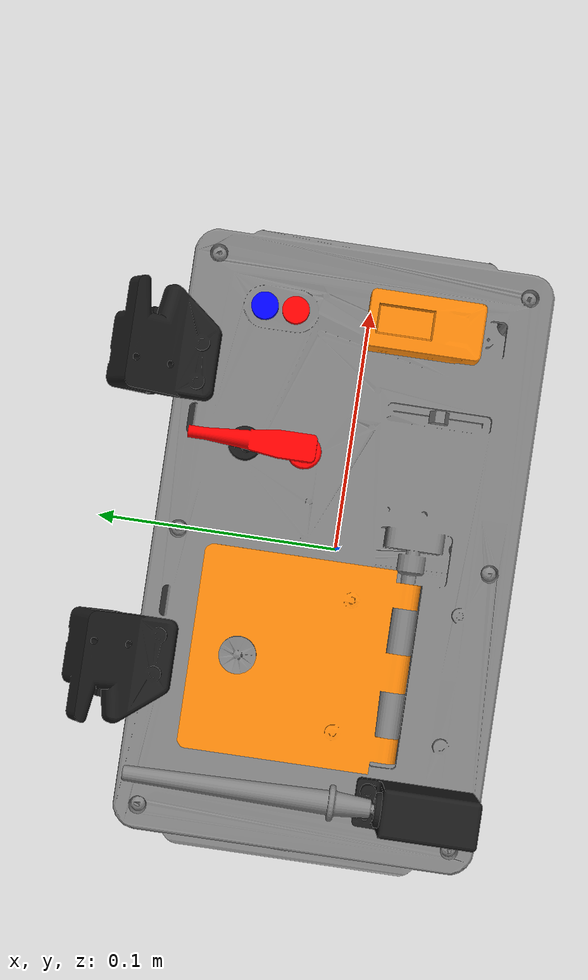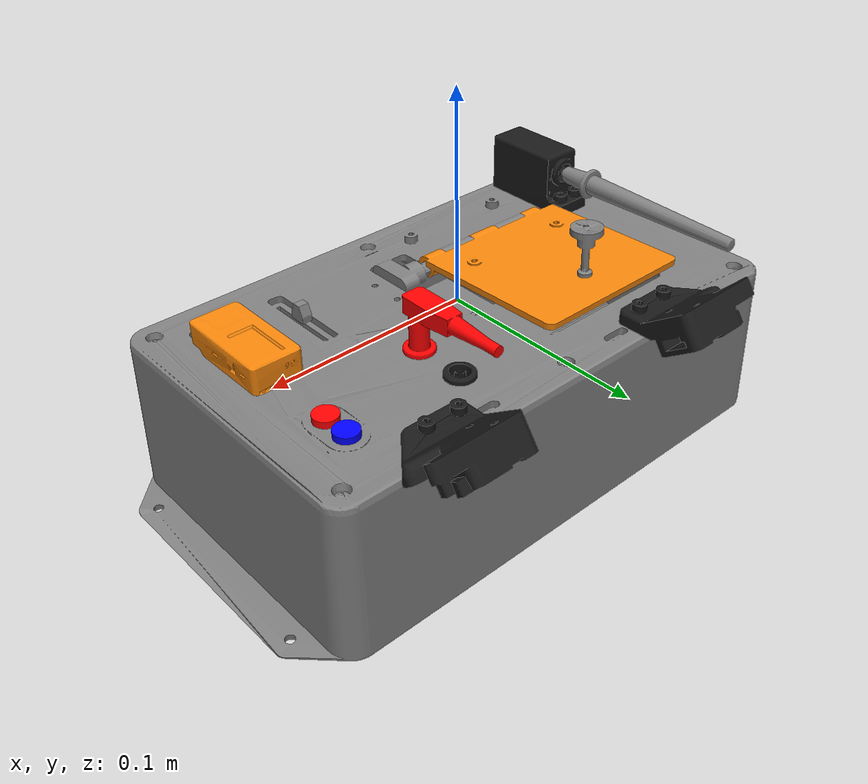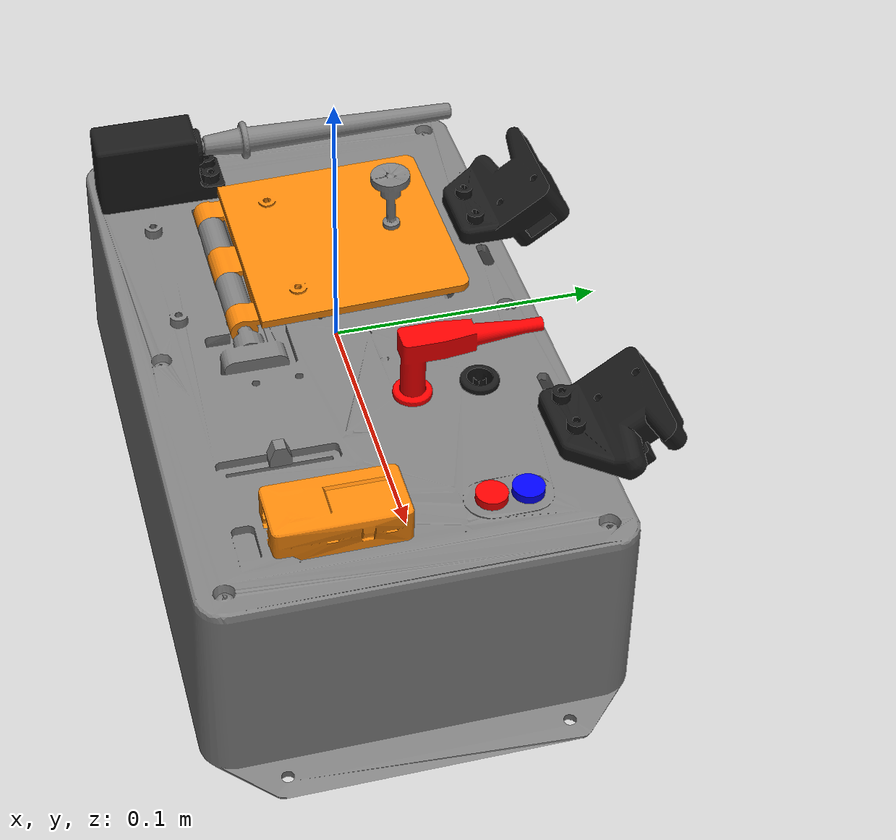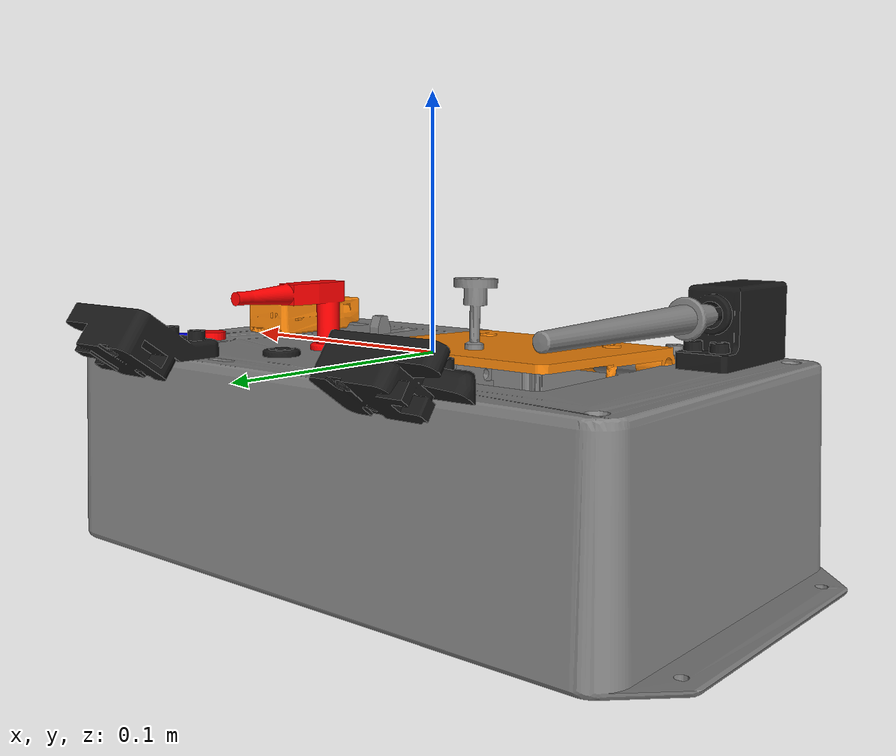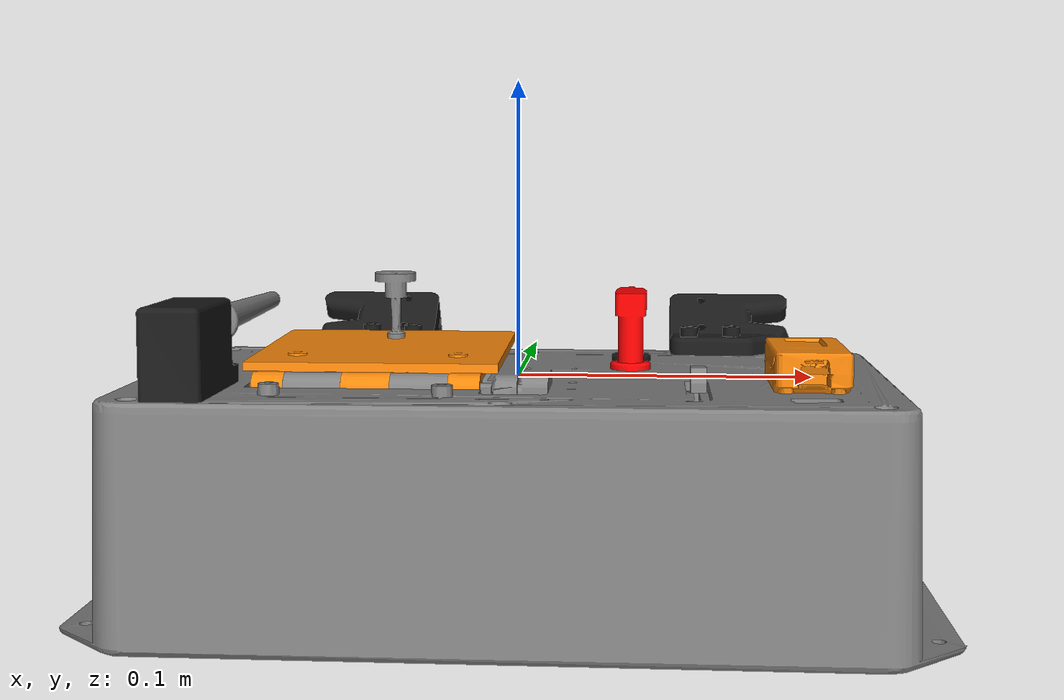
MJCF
<?xml version="1.0" ?>
<mujoco model="task_board">
    <option timestep="0.001" integrator="implicitfast" gravity="0 0 -9.81" >
        <flag energy="enable" contact="enable"/>
    </option>
	<include file="task_board_main.xml"/>
    <include file="task_board_probe.xml"/>
    <include file="task_board_cable_plug.xml"/>
</mujoco>

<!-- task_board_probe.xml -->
<mujoco model="task_board_probe">
	<compiler meshdir="task_board/meshes" texturedir="task_board/textures" angle="radian" autolimits="true" balanceinertia="true" />
	<asset>
        <mesh name="TaskBoardProbe" file="stl/TaskBoardProbe.stl" />
        <mesh name="UCX_TaskBoardProbe_001" file="stl/UCX_TaskBoardProbe_001.stl" />
        <mesh name="UCX_TaskBoardProbe_002" file="stl/UCX_TaskBoardProbe_002.stl" />
        <mesh name="UCX_TaskBoardProbe_003" file="stl/UCX_TaskBoardProbe_003.stl" />
        <mesh name="UCX_TaskBoardProbe_004" file="stl/UCX_TaskBoardProbe_004.stl" />
    </asset>

    <default>
		<default class="task_board_probe_visual">
			<geom contype="0" conaffinity="0"/>
		</default>
		<default class="task_board_probe_collision">
			<geom rgba="0.9 0.9 0.9 1.0" group="3"/>
		</default>
	</default>
	<worldbody>
		<body name="task_board_probe" pos="-0.101844 -0.007 0.019" quat="1.0 0.0 0.0 0.0">
			<inertial mass="0.006231526378542185" pos="-2.27348695425178e-11 0.0001277880510315299 -3.0341962276025924e-09" quat="-0.4846147894859314 -0.5149257183074951 0.5149257183074951 0.4846147894859314" diaginertia="6.648315320489928e-08 5.043107648816658e-06 5.043107648816658e-06"/>
			<freejoint/>
			<geom name="task_board_probe_visual" type="mesh" pos="-1.1167492885988395e-07 0.016684556379914284 2.0637875408624495e-08" quat="0.7071067690849304 0.7071067690849304 0.0 0.0" mesh="TaskBoardProbe" rgba="0.5 0.5 0.5 1.0" class="task_board_probe_visual"/>
			<geom name="task_board_probe_collision_001" type="mesh" pos="-1.2777578474454376e-12 -0.028279362246394157 -1.9006438645163826e-09" quat="0.7071067690849304 0.7071067690849304 0.0 0.0" mesh="UCX_TaskBoardProbe_001" class="task_board_probe_collision"/>
			<geom name="task_board_probe_collision_002" type="mesh" pos="-2.993737419423881e-12 -0.014133143238723278 -3.2889999612706333e-09" quat="0.7071067690849304 0.7071067690849304 0.0 0.0" mesh="UCX_TaskBoardProbe_002" class="task_board_probe_collision"/>
			<geom name="task_board_probe_collision_003" type="mesh" pos="1.3151225984955883e-12 -0.00588131882250309 -2.1292419216667469e-10" quat="0.7071067690849304 0.0 0.0 0.7071067690849304" mesh="UCX_TaskBoardProbe_003" class="task_board_probe_collision"/>
			<geom name="task_board_probe_collision_004" type="mesh" pos="6.804208238508913e-12 0.031408458948135376 -3.2541387362527985e-09" quat="0.7071067690849304 0.7071067690849304 0.0 0.0" mesh="UCX_TaskBoardProbe_004" class="task_board_probe_collision"/>
		</body>
	</worldbody>
</mujoco>

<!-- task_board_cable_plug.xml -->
<mujoco model="task_board_cable_plug">
	<compiler meshdir="task_board/meshes" texturedir="task_board/textures" angle="radian" autolimits="true" balanceinertia="true" />
	<default>
		<default class="task_board_cable_plug_visual">
			<geom contype="0" conaffinity="0"/>
		</default>
		<default class="task_board_cable_plug_collision">
			<geom rgba="0.9 0.9 0.9 1.0" group="3" friction="10.0" solimp="0.95 0.99 0.001" solref="0.004 1"/>
		</default>
	</default>
	<asset>
		<mesh name="TaskBoardCablePlug" file="stl/TaskBoardCablePlug.stl" scale="1.0 1.0 1.0"/>
		<mesh name="UCX_TaskBoardCablePlug_001" file="stl/UCX_TaskBoardCablePlug_001.stl" scale="1.0 1.0 1.0"/>
		<mesh name="UCX_TaskBoardCablePlug_002" file="stl/UCX_TaskBoardCablePlug_002.stl" scale="1.0 1.0 1.0"/>
	</asset>
	<worldbody>
		<body name="task_board_cable_plug" pos="0.03844299912452698 0.01890699937939644 0.019" quat="-0.7071068 0 0 0.7071068">
			<freejoint/>
			<inertial mass="0.009143883362412453" pos="-0.00967562384903431 -4.372870676672136e-10 -4.746794729726389e-05" quat="0.42671170830726624 0.5638414025306702 0.5638414025306702 0.42671170830726624" diaginertia="1.8079294932249468e-06 1.5876109955570428e-06 3.367600811543525e-07"/>
			<geom name="task_board_cable_plug_visual" type="mesh" pos="-0.008676216006278992 -3.99139027384976e-10 -0.0008309241384267807" quat="0.4194165766239166 0.5692887902259827 0.5692887902259827 0.4194165766239166" mesh="TaskBoardCablePlug" rgba="1.0 0.0 0.0 1.0" class="task_board_cable_plug_visual"/>
			<geom name="task_board_cable_plug_collision_001" type="mesh" pos="-0.0078870989382267 -2.2360559237544209e-10 0.00400000112131238" quat="0.0 0.7071067690849304 0.0 0.7071067690849304" mesh="UCX_TaskBoardCablePlug_001" class="task_board_cable_plug_collision"/>
			<geom name="task_board_cable_plug_collision_002" type="mesh" pos="-0.032687146216630936 -1.8100263510234527e-09 0.004000004380941391" quat="0.5 0.5 0.5 0.5" mesh="UCX_TaskBoardCablePlug_002" class="task_board_cable_plug_collision"/>
			<geom name="task_board_cable_plug_collision_003" type="cylinder" pos="0.0 0.0 -0.008999999612569809" quat="1.0 0.0 0.0 0.0" size="0.004000000189989805 0.008999999612569809 0.0" class="task_board_cable_plug_collision"/>
		</body>
	</worldbody>
	<equality/>
</mujoco>
